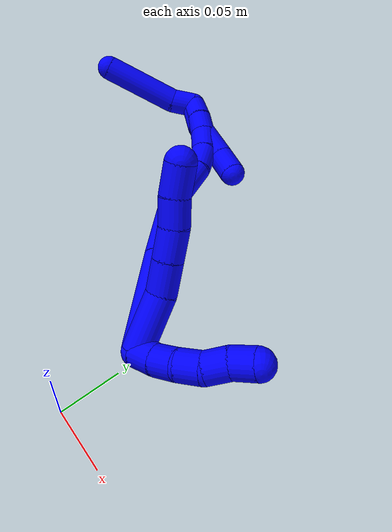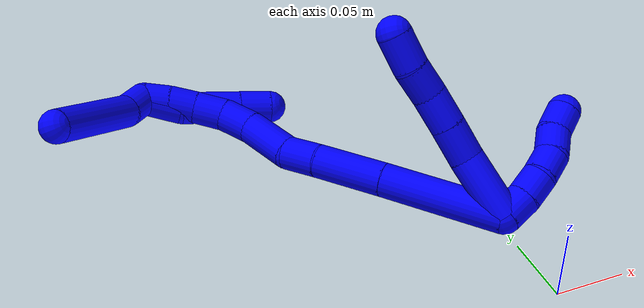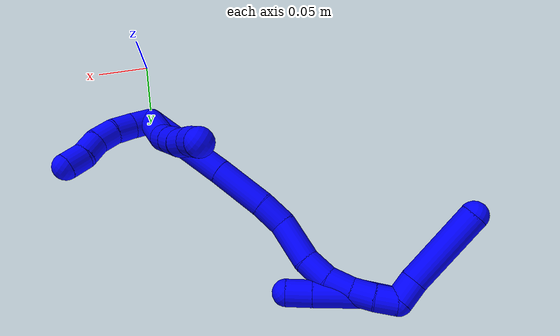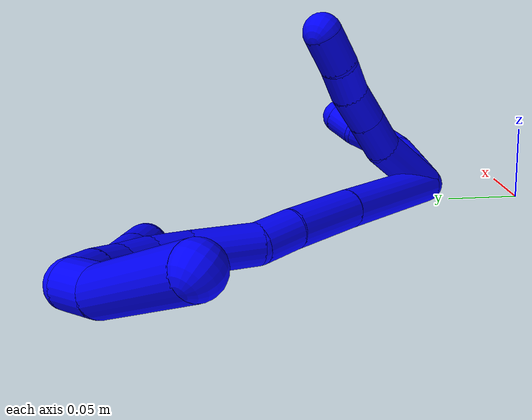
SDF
<sdf version="1.7">
 <world name="default">
  <model name="1">
   <static>0</static>
   <link name="1">
    <collision name="collision-cylinder-e_1_2_8">
     <pose>-0.022872 -0.003601 0.006556 0.502319 -1.25471 -0.367869</pose>
     <geometry><cylinder><radius>0.0125</radius><length>0.048128</length></cylinder></geometry>
     <surface>
      <friction><ode><mu>1.16</mu><mu2>1.16</mu2><slip1>0</slip1><slip2>0</slip2></ode></friction>
      <contact><ode><kp>1e+06</kp><kd>1</kd><max_vel>0</max_vel><min_depth>0.001</min_depth></ode></contact>
     </surface>
    </collision>
    <visual name="visual-cylinder-e_1_2_8">
     <pose>-0.022872 -0.003601 0.006556 0.502319 -1.25471 -0.367869</pose>
     <geometry><cylinder><radius>0.0125</radius><length>0.048128</length></cylinder></geometry>
     <material><ambient>0 0 1 1</ambient></material>
    </visual>
    <collision name="collision-cylinder-e_2_8_9">
     <pose>-0.059199 -0.006271 0.014776 -0.510667 -1.43005 0.445776</pose>
     <geometry><cylinder><radius>0.0125</radius><length>0.02718</length></cylinder></geometry>
     <surface>
      <friction><ode><mu>1.16</mu><mu2>1.16</mu2><slip1>0</slip1><slip2>0</slip2></ode></friction>
      <contact><ode><kp>1e+06</kp><kd>1</kd><max_vel>0</max_vel><min_depth>0.001</min_depth></ode></contact>
     </surface>
    </collision>
    <visual name="visual-cylinder-e_2_8_9">
     <pose>-0.059199 -0.006271 0.014776 -0.510667 -1.43005 0.445776</pose>
     <geometry><cylinder><radius>0.0125</radius><length>0.02718</length></cylinder></geometry>
     <material><ambient>0 0 1 1</ambient></material>
    </visual>
    <collision name="collision-cylinder-e_3_9_10">
     <pose>-0.085265 -0.004451 0.018274 -0.450809 -1.41054 0.385574</pose>
     <geometry><cylinder><radius>0.0125</radius><length>0.025549</length></cylinder></geometry>
     <surface>
      <friction><ode><mu>1.16</mu><mu2>1.16</mu2><slip1>0</slip1><slip2>0</slip2></ode></friction>
      <contact><ode><kp>1e+06</kp><kd>1</kd><max_vel>0</max_vel><min_depth>0.001</min_depth></ode></contact>
     </surface>
    </collision>
    <visual name="visual-cylinder-e_3_9_10">
     <pose>-0.085265 -0.004451 0.018274 -0.450809 -1.41054 0.385574</pose>
     <geometry><cylinder><radius>0.0125</radius><length>0.025549</length></cylinder></geometry>
     <material><ambient>0 0 1 1</ambient></material>
    </visual>
    <collision name="collision-cylinder-e_4_10_11">
     <pose>-0.109129 -0.000798 0.021444 -1.12076 -1.30441 0.893735</pose>
     <geometry><cylinder><radius>0.0125</radius><length>0.023328</length></cylinder></geometry>
     <surface>
      <friction><ode><mu>1.16</mu><mu2>1.16</mu2><slip1>0</slip1><slip2>0</slip2></ode></friction>
      <contact><ode><kp>1e+06</kp><kd>1</kd><max_vel>0</max_vel><min_depth>0.001</min_depth></ode></contact>
     </surface>
    </collision>
    <visual name="visual-cylinder-e_4_10_11">
     <pose>-0.109129 -0.000798 0.021444 -1.12076 -1.30441 0.893735</pose>
     <geometry><cylinder><radius>0.0125</radius><length>0.023328</length></cylinder></geometry>
     <material><ambient>0 0 1 1</ambient></material>
    </visual>
    <collision name="collision-cylinder-e_5_11_6">
     <pose>-0.133223 0.003086 0.023448 -1.03289 -1.46966 0.948207</pose>
     <geometry><cylinder><radius>0.0125</radius><length>0.025815</length></cylinder></geometry>
     <surface>
      <friction><ode><mu>1.16</mu><mu2>1.16</mu2><slip1>0</slip1><slip2>0</slip2></ode></friction>
      <contact><ode><kp>1e+06</kp><kd>1</kd><max_vel>0</max_vel><min_depth>0.001</min_depth></ode></contact>
     </surface>
    </collision>
    <visual name="visual-cylinder-e_5_11_6">
     <pose>-0.133223 0.003086 0.023448 -1.03289 -1.46966 0.948207</pose>
     <geometry><cylinder><radius>0.0125</radius><length>0.025815</length></cylinder></geometry>
     <material><ambient>0 0 1 1</ambient></material>
    </visual>
    <collision name="collision-cylinder-e_1_2_12">
     <pose>-0.002336 -0.007349 -0.006367 2.28468 -0.235781 -0.50744</pose>
     <geometry><cylinder><radius>0.0125</radius><length>0.02</length></cylinder></geometry>
     <surface>
      <friction><ode><mu>1.16</mu><mu2>1.16</mu2><slip1>0</slip1><slip2>0</slip2></ode></friction>
      <contact><ode><kp>1e+06</kp><kd>1</kd><max_vel>0</max_vel><min_depth>0.001</min_depth></ode></contact>
     </surface>
    </collision>
    <visual name="visual-cylinder-e_1_2_12">
     <pose>-0.002336 -0.007349 -0.006367 2.28468 -0.235781 -0.50744</pose>
     <geometry><cylinder><radius>0.0125</radius><length>0.02</length></cylinder></geometry>
     <material><ambient>0 0 1 1</ambient></material>
    </visual>
    <collision name="collision-cylinder-e_2_12_13">
     <pose>-0.008521 -0.021924 -0.018476 2.24234 -0.395122 -0.786376</pose>
     <geometry><cylinder><radius>0.0125</radius><length>0.02</length></cylinder></geometry>
     <surface>
      <friction><ode><mu>1.16</mu><mu2>1.16</mu2><slip1>0</slip1><slip2>0</slip2></ode></friction>
      <contact><ode><kp>1e+06</kp><kd>1</kd><max_vel>0</max_vel><min_depth>0.001</min_depth></ode></contact>
     </surface>
    </collision>
    <visual name="visual-cylinder-e_2_12_13">
     <pose>-0.008521 -0.021924 -0.018476 2.24234 -0.395122 -0.786376</pose>
     <geometry><cylinder><radius>0.0125</radius><length>0.02</length></cylinder></geometry>
     <material><ambient>0 0 1 1</ambient></material>
    </visual>
    <collision name="collision-cylinder-e_3_13_14">
     <pose>-0.015911 -0.037622 -0.028176 2.00777 -0.361906 -0.559686</pose>
     <geometry><cylinder><radius>0.0125</radius><length>0.02</length></cylinder></geometry>
     <surface>
      <friction><ode><mu>1.16</mu><mu2>1.16</mu2><slip1>0</slip1><slip2>0</slip2></ode></friction>
      <contact><ode><kp>1e+06</kp><kd>1</kd><max_vel>0</max_vel><min_depth>0.001</min_depth></ode></contact>
     </surface>
    </collision>
    <visual name="visual-cylinder-e_3_13_14">
     <pose>-0.015911 -0.037622 -0.028176 2.00777 -0.361906 -0.559686</pose>
     <geometry><cylinder><radius>0.0125</radius><length>0.02</length></cylinder></geometry>
     <material><ambient>0 0 1 1</ambient></material>
    </visual>
    <collision name="collision-cylinder-e_4_14_15">
     <pose>-0.02488 -0.054424 -0.033217 1.70012 -0.573868 -0.648185</pose>
     <geometry><cylinder><radius>0.0125</radius><length>0.02</length></cylinder></geometry>
     <surface>
      <friction><ode><mu>1.16</mu><mu2>1.16</mu2><slip1>0</slip1><slip2>0</slip2></ode></friction>
      <contact><ode><kp>1e+06</kp><kd>1</kd><max_vel>0</max_vel><min_depth>0.001</min_depth></ode></contact>
     </surface>
    </collision>
    <visual name="visual-cylinder-e_4_14_15">
     <pose>-0.02488 -0.054424 -0.033217 1.70012 -0.573868 -0.648185</pose>
     <geometry><cylinder><radius>0.0125</radius><length>0.02</length></cylinder></geometry>
     <material><ambient>0 0 1 1</ambient></material>
    </visual>
    <collision name="collision-cylinder-e_5_15_5">
     <pose>-0.034593 -0.070962 -0.038075 2.00176 -0.442634 -0.675306</pose>
     <geometry><cylinder><radius>0.0125</radius><length>0.02</length></cylinder></geometry>
     <surface>
      <friction><ode><mu>1.16</mu><mu2>1.16</mu2><slip1>0</slip1><slip2>0</slip2></ode></friction>
      <contact><ode><kp>1e+06</kp><kd>1</kd><max_vel>0</max_vel><min_depth>0.001</min_depth></ode></contact>
     </surface>
    </collision>
    <visual name="visual-cylinder-e_5_15_5">
     <pose>-0.034593 -0.070962 -0.038075 2.00176 -0.442634 -0.675306</pose>
     <geometry><cylinder><radius>0.0125</radius><length>0.02</length></cylinder></geometry>
     <material><ambient>0 0 1 1</ambient></material>
    </visual>
    <collision name="collision-cylinder-e_1_2_16">
     <pose>-0.023474 -0.001291 0.03821 0.033766 -0.550652 -0.00954</pose>
     <geometry><cylinder><radius>0.0125</radius><length>0.089726</length></cylinder></geometry>
     <surface>
      <friction><ode><mu>1.16</mu><mu2>1.16</mu2><slip1>0</slip1><slip2>0</slip2></ode></friction>
      <contact><ode><kp>1e+06</kp><kd>1</kd><max_vel>0</max_vel><min_depth>0.001</min_depth></ode></contact>
     </surface>
    </collision>
    <visual name="visual-cylinder-e_1_2_16">
     <pose>-0.023474 -0.001291 0.03821 0.033766 -0.550652 -0.00954</pose>
     <geometry><cylinder><radius>0.0125</radius><length>0.089726</length></cylinder></geometry>
     <material><ambient>0 0 1 1</ambient></material>
    </visual>
    <collision name="collision-cylinder-e_2_16_17">
     <pose>-0.059884 -0.004083 0.098946 0.066585 -0.520313 -0.01773</pose>
     <geometry><cylinder><radius>0.0125</radius><length>0.052039</length></cylinder></geometry>
     <surface>
      <friction><ode><mu>1.16</mu><mu2>1.16</mu2><slip1>0</slip1><slip2>0</slip2></ode></friction>
      <contact><ode><kp>1e+06</kp><kd>1</kd><max_vel>0</max_vel><min_depth>0.001</min_depth></ode></contact>
     </surface>
    </collision>
    <visual name="visual-cylinder-e_2_16_17">
     <pose>-0.059884 -0.004083 0.098946 0.066585 -0.520313 -0.01773</pose>
     <geometry><cylinder><radius>0.0125</radius><length>0.052039</length></cylinder></geometry>
     <material><ambient>0 0 1 1</ambient></material>
    </visual>
    <collision name="collision-cylinder-e_3_17_18">
     <pose>-0.078561 -0.007548 0.133405 0.163014 -0.443194 -0.036804</pose>
     <geometry><cylinder><radius>0.0125</radius><length>0.026774</length></cylinder></geometry>
     <surface>
      <friction><ode><mu>1.16</mu><mu2>1.16</mu2><slip1>0</slip1><slip2>0</slip2></ode></friction>
      <contact><ode><kp>1e+06</kp><kd>1</kd><max_vel>0</max_vel><min_depth>0.001</min_depth></ode></contact>
     </surface>
    </collision>
    <visual name="visual-cylinder-e_3_17_18">
     <pose>-0.078561 -0.007548 0.133405 0.163014 -0.443194 -0.036804</pose>
     <geometry><cylinder><radius>0.0125</radius><length>0.026774</length></cylinder></geometry>
     <material><ambient>0 0 1 1</ambient></material>
    </visual>
    <collision name="collision-cylinder-e_4_18_19">
     <pose>-0.095921 -0.017227 0.160375 0.474126 -0.602295 -0.149802</pose>
     <geometry><cylinder><radius>0.0125</radius><length>0.041019</length></cylinder></geometry>
     <surface>
      <friction><ode><mu>1.16</mu><mu2>1.16</mu2><slip1>0</slip1><slip2>0</slip2></ode></friction>
      <contact><ode><kp>1e+06</kp><kd>1</kd><max_vel>0</max_vel><min_depth>0.001</min_depth></ode></contact>
     </surface>
    </collision>
    <visual name="visual-cylinder-e_4_18_19">
     <pose>-0.095921 -0.017227 0.160375 0.474126 -0.602295 -0.149802</pose>
     <geometry><cylinder><radius>0.0125</radius><length>0.041019</length></cylinder></geometry>
     <material><ambient>0 0 1 1</ambient></material>
    </visual>
    <collision name="collision-cylinder-e_5_19_20">
     <pose>-0.115251 -0.026581 0.185381 0.162814 -0.651877 -0.055138</pose>
     <geometry><cylinder><radius>0.0125</radius><length>0.025418</length></cylinder></geometry>
     <surface>
      <friction><ode><mu>1.16</mu><mu2>1.16</mu2><slip1>0</slip1><slip2>0</slip2></ode></friction>
      <contact><ode><kp>1e+06</kp><kd>1</kd><max_vel>0</max_vel><min_depth>0.001</min_depth></ode></contact>
     </surface>
    </collision>
    <visual name="visual-cylinder-e_5_19_20">
     <pose>-0.115251 -0.026581 0.185381 0.162814 -0.651877 -0.055138</pose>
     <geometry><cylinder><radius>0.0125</radius><length>0.025418</length></cylinder></geometry>
     <material><ambient>0 0 1 1</ambient></material>
    </visual>
    <collision name="collision-cylinder-e_6_20_21">
     <pose>-0.129694 -0.026132 0.204962 -0.213765 -0.600263 0.066385</pose>
     <geometry><cylinder><radius>0.0125</radius><length>0.023838</length></cylinder></geometry>
     <surface>
      <friction><ode><mu>1.16</mu><mu2>1.16</mu2><slip1>0</slip1><slip2>0</slip2></ode></friction>
      <contact><ode><kp>1e+06</kp><kd>1</kd><max_vel>0</max_vel><min_depth>0.001</min_depth></ode></contact>
     </surface>
    </collision>
    <visual name="visual-cylinder-e_6_20_21">
     <pose>-0.129694 -0.026132 0.204962 -0.213765 -0.600263 0.066385</pose>
     <geometry><cylinder><radius>0.0125</radius><length>0.023838</length></cylinder></geometry>
     <material><ambient>0 0 1 1</ambient></material>
    </visual>
    <collision name="collision-cylinder-e_7_21_22">
     <pose>-0.142559 -0.020499 0.222368 -0.427005 -0.621507 0.139034</pose>
     <geometry><cylinder><radius>0.0125</radius><length>0.021067</length></cylinder></geometry>
     <surface>
      <friction><ode><mu>1.16</mu><mu2>1.16</mu2><slip1>0</slip1><slip2>0</slip2></ode></friction>
      <contact><ode><kp>1e+06</kp><kd>1</kd><max_vel>0</max_vel><min_depth>0.001</min_depth></ode></contact>
     </surface>
    </collision>
    <visual name="visual-cylinder-e_7_21_22">
     <pose>-0.142559 -0.020499 0.222368 -0.427005 -0.621507 0.139034</pose>
     <geometry><cylinder><radius>0.0125</radius><length>0.021067</length></cylinder></geometry>
     <material><ambient>0 0 1 1</ambient></material>
    </visual>
    <collision name="collision-cylinder-e_8_22_1">
     <pose>-0.153676 -0.012653 0.23777 -0.514536 -0.518362 0.139293</pose>
     <geometry><cylinder><radius>0.0125</radius><length>0.020118</length></cylinder></geometry>
     <surface>
      <friction><ode><mu>1.16</mu><mu2>1.16</mu2><slip1>0</slip1><slip2>0</slip2></ode></friction>
      <contact><ode><kp>1e+06</kp><kd>1</kd><max_vel>0</max_vel><min_depth>0.001</min_depth></ode></contact>
     </surface>
    </collision>
    <visual name="visual-cylinder-e_8_22_1">
     <pose>-0.153676 -0.012653 0.23777 -0.514536 -0.518362 0.139293</pose>
     <geometry><cylinder><radius>0.0125</radius><length>0.020118</length></cylinder></geometry>
     <material><ambient>0 0 1 1</ambient></material>
    </visual>
    <collision name="collision-cylinder-e_1_1_23">
     <pose>-0.157863 0.003049 0.246574 -1.46612 0.06947 -0.062558</pose>
     <geometry><cylinder><radius>0.0125</radius><length>0.022984</length></cylinder></geometry>
     <surface>
      <friction><ode><mu>1.16</mu><mu2>1.16</mu2><slip1>0</slip1><slip2>0</slip2></ode></friction>
      <contact><ode><kp>1e+06</kp><kd>1</kd><max_vel>0</max_vel><min_depth>0.001</min_depth></ode></contact>
     </surface>
    </collision>
    <visual name="visual-cylinder-e_1_1_23">
     <pose>-0.157863 0.003049 0.246574 -1.46612 0.06947 -0.062558</pose>
     <geometry><cylinder><radius>0.0125</radius><length>0.022984</length></cylinder></geometry>
     <material><ambient>0 0 1 1</ambient></material>
    </visual>
    <collision name="collision-cylinder-e_2_23_4">
     <pose>-0.165424 0.052026 0.248799 -1.54345 -0.218825 0.212966</pose>
     <geometry><cylinder><radius>0.0125</radius><length>0.077016</length></cylinder></geometry>
     <surface>
      <friction><ode><mu>1.16</mu><mu2>1.16</mu2><slip1>0</slip1><slip2>0</slip2></ode></friction>
      <contact><ode><kp>1e+06</kp><kd>1</kd><max_vel>0</max_vel><min_depth>0.001</min_depth></ode></contact>
     </surface>
    </collision>
    <visual name="visual-cylinder-e_2_23_4">
     <pose>-0.165424 0.052026 0.248799 -1.54345 -0.218825 0.212966</pose>
     <geometry><cylinder><radius>0.0125</radius><length>0.077016</length></cylinder></geometry>
     <material><ambient>0 0 1 1</ambient></material>
    </visual>
    <collision name="collision-cylinder-e_1_1_24">
     <pose>-0.149341 -0.014307 0.234831 2.62755 0.655871 1.82604</pose>
     <geometry><cylinder><radius>0.0125</radius><length>0.030561</length></cylinder></geometry>
     <surface>
      <friction><ode><mu>1.16</mu><mu2>1.16</mu2><slip1>0</slip1><slip2>0</slip2></ode></friction>
      <contact><ode><kp>1e+06</kp><kd>1</kd><max_vel>0</max_vel><min_depth>0.001</min_depth></ode></contact>
     </surface>
    </collision>
    <visual name="visual-cylinder-e_1_1_24">
     <pose>-0.149341 -0.014307 0.234831 2.62755 0.655871 1.82604</pose>
     <geometry><cylinder><radius>0.0125</radius><length>0.030561</length></cylinder></geometry>
     <material><ambient>0 0 1 1</ambient></material>
    </visual>
    <collision name="collision-cylinder-e_2_24_25">
     <pose>-0.13101 -0.033146 0.207947 2.47386 0.40876 1.07729</pose>
     <geometry><cylinder><radius>0.0125</radius><length>0.045351</length></cylinder></geometry>
     <surface>
      <friction><ode><mu>1.16</mu><mu2>1.16</mu2><slip1>0</slip1><slip2>0</slip2></ode></friction>
      <contact><ode><kp>1e+06</kp><kd>1</kd><max_vel>0</max_vel><min_depth>0.001</min_depth></ode></contact>
     </surface>
    </collision>
    <visual name="visual-cylinder-e_2_24_25">
     <pose>-0.13101 -0.033146 0.207947 2.47386 0.40876 1.07729</pose>
     <geometry><cylinder><radius>0.0125</radius><length>0.045351</length></cylinder></geometry>
     <material><ambient>0 0 1 1</ambient></material>
    </visual>
    <collision name="collision-cylinder-e_3_25_3">
     <pose>-0.11722 -0.052637 0.182744 2.50102 0.407843 1.11494</pose>
     <geometry><cylinder><radius>0.0125</radius><length>0.024088</length></cylinder></geometry>
     <surface>
      <friction><ode><mu>1.16</mu><mu2>1.16</mu2><slip1>0</slip1><slip2>0</slip2></ode></friction>
      <contact><ode><kp>1e+06</kp><kd>1</kd><max_vel>0</max_vel><min_depth>0.001</min_depth></ode></contact>
     </surface>
    </collision>
    <visual name="visual-cylinder-e_3_25_3">
     <pose>-0.11722 -0.052637 0.182744 2.50102 0.407843 1.11494</pose>
     <geometry><cylinder><radius>0.0125</radius><length>0.024088</length></cylinder></geometry>
     <material><ambient>0 0 1 1</ambient></material>
    </visual>
    <collision name="collision-sphere-3">
     <pose>-0.112443 -0.059245 0.17388 0 -0 0</pose>
     <geometry><sphere><radius>0.0125</radius></sphere></geometry>
     <surface>
      <friction><ode><mu>1.16</mu><mu2>1.16</mu2><slip1>0</slip1><slip2>0</slip2></ode></friction>
      <contact><ode><kp>1e+06</kp><kd>1</kd><max_vel>0</max_vel><min_depth>0.001</min_depth></ode></contact>
     </surface>
    </collision>
    <visual name="visual-sphere-3">
     <pose>-0.112443 -0.059245 0.17388 0 -0 0</pose>
     <geometry><sphere><radius>0.0125</radius></sphere></geometry>
     <material><ambient>0 0 1 1</ambient></material>
    </visual>
    <collision name="collision-sphere-25">
     <pose>-0.121997 -0.04603 0.191609 0 -0 0</pose>
     <geometry><sphere><radius>0.0125</radius></sphere></geometry>
     <surface>
      <friction><ode><mu>1.16</mu><mu2>1.16</mu2><slip1>0</slip1><slip2>0</slip2></ode></friction>
      <contact><ode><kp>1e+06</kp><kd>1</kd><max_vel>0</max_vel><min_depth>0.001</min_depth></ode></contact>
     </surface>
    </collision>
    <visual name="visual-sphere-25">
     <pose>-0.121997 -0.04603 0.191609 0 -0 0</pose>
     <geometry><sphere><radius>0.0125</radius></sphere></geometry>
     <material><ambient>0 0 1 1</ambient></material>
    </visual>
    <collision name="collision-sphere-24">
     <pose>-0.140022 -0.020262 0.224285 0 -0 0</pose>
     <geometry><sphere><radius>0.0125</radius></sphere></geometry>
     <surface>
      <friction><ode><mu>1.16</mu><mu2>1.16</mu2><slip1>0</slip1><slip2>0</slip2></ode></friction>
      <contact><ode><kp>1e+06</kp><kd>1</kd><max_vel>0</max_vel><min_depth>0.001</min_depth></ode></contact>
     </surface>
    </collision>
    <visual name="visual-sphere-24">
     <pose>-0.140022 -0.020262 0.224285 0 -0 0</pose>
     <geometry><sphere><radius>0.0125</radius></sphere></geometry>
     <material><ambient>0 0 1 1</ambient></material>
    </visual>
    <collision name="collision-sphere-4">
     <pose>-0.173784 0.089602 0.249827 0 -0 0</pose>
     <geometry><sphere><radius>0.0125</radius></sphere></geometry>
     <surface>
      <friction><ode><mu>1.16</mu><mu2>1.16</mu2><slip1>0</slip1><slip2>0</slip2></ode></friction>
      <contact><ode><kp>1e+06</kp><kd>1</kd><max_vel>0</max_vel><min_depth>0.001</min_depth></ode></contact>
     </surface>
    </collision>
    <visual name="visual-sphere-4">
     <pose>-0.173784 0.089602 0.249827 0 -0 0</pose>
     <geometry><sphere><radius>0.0125</radius></sphere></geometry>
     <material><ambient>0 0 1 1</ambient></material>
    </visual>
    <collision name="collision-sphere-23">
     <pose>-0.157065 0.014451 0.247771 0 -0 0</pose>
     <geometry><sphere><radius>0.0125</radius></sphere></geometry>
     <surface>
      <friction><ode><mu>1.16</mu><mu2>1.16</mu2><slip1>0</slip1><slip2>0</slip2></ode></friction>
      <contact><ode><kp>1e+06</kp><kd>1</kd><max_vel>0</max_vel><min_depth>0.001</min_depth></ode></contact>
     </surface>
    </collision>
    <visual name="visual-sphere-23">
     <pose>-0.157065 0.014451 0.247771 0 -0 0</pose>
     <geometry><sphere><radius>0.0125</radius></sphere></geometry>
     <material><ambient>0 0 1 1</ambient></material>
    </visual>
    <collision name="collision-sphere-1">
     <pose>-0.15866 -0.008353 0.245376 0 -0 0</pose>
     <geometry><sphere><radius>0.0125</radius></sphere></geometry>
     <surface>
      <friction><ode><mu>1.16</mu><mu2>1.16</mu2><slip1>0</slip1><slip2>0</slip2></ode></friction>
      <contact><ode><kp>1e+06</kp><kd>1</kd><max_vel>0</max_vel><min_depth>0.001</min_depth></ode></contact>
     </surface>
    </collision>
    <visual name="visual-sphere-1">
     <pose>-0.15866 -0.008353 0.245376 0 -0 0</pose>
     <geometry><sphere><radius>0.0125</radius></sphere></geometry>
     <material><ambient>0 0 1 1</ambient></material>
    </visual>
    <collision name="collision-sphere-22">
     <pose>-0.148693 -0.016953 0.230163 0 -0 0</pose>
     <geometry><sphere><radius>0.0125</radius></sphere></geometry>
     <surface>
      <friction><ode><mu>1.16</mu><mu2>1.16</mu2><slip1>0</slip1><slip2>0</slip2></ode></friction>
      <contact><ode><kp>1e+06</kp><kd>1</kd><max_vel>0</max_vel><min_depth>0.001</min_depth></ode></contact>
     </surface>
    </collision>
    <visual name="visual-sphere-22">
     <pose>-0.148693 -0.016953 0.230163 0 -0 0</pose>
     <geometry><sphere><radius>0.0125</radius></sphere></geometry>
     <material><ambient>0 0 1 1</ambient></material>
    </visual>
    <collision name="collision-sphere-21">
     <pose>-0.136426 -0.024046 0.214574 0 -0 0</pose>
     <geometry><sphere><radius>0.0125</radius></sphere></geometry>
     <surface>
      <friction><ode><mu>1.16</mu><mu2>1.16</mu2><slip1>0</slip1><slip2>0</slip2></ode></friction>
      <contact><ode><kp>1e+06</kp><kd>1</kd><max_vel>0</max_vel><min_depth>0.001</min_depth></ode></contact>
     </surface>
    </collision>
    <visual name="visual-sphere-21">
     <pose>-0.136426 -0.024046 0.214574 0 -0 0</pose>
     <geometry><sphere><radius>0.0125</radius></sphere></geometry>
     <material><ambient>0 0 1 1</ambient></material>
    </visual>
    <collision name="collision-sphere-6">
     <pose>-0.146065 0.004205 0.024115 0 -0 0</pose>
     <geometry><sphere><radius>0.0125</radius></sphere></geometry>
     <surface>
      <friction><ode><mu>1.16</mu><mu2>1.16</mu2><slip1>0</slip1><slip2>0</slip2></ode></friction>
      <contact><ode><kp>1e+06</kp><kd>1</kd><max_vel>0</max_vel><min_depth>0.001</min_depth></ode></contact>
     </surface>
    </collision>
    <visual name="visual-sphere-6">
     <pose>-0.146065 0.004205 0.024115 0 -0 0</pose>
     <geometry><sphere><radius>0.0125</radius></sphere></geometry>
     <material><ambient>0 0 1 1</ambient></material>
    </visual>
    <collision name="collision-sphere-11">
     <pose>-0.120382 0.001967 0.02278 0 -0 0</pose>
     <geometry><sphere><radius>0.0125</radius></sphere></geometry>
     <surface>
      <friction><ode><mu>1.16</mu><mu2>1.16</mu2><slip1>0</slip1><slip2>0</slip2></ode></friction>
      <contact><ode><kp>1e+06</kp><kd>1</kd><max_vel>0</max_vel><min_depth>0.001</min_depth></ode></contact>
     </surface>
    </collision>
    <visual name="visual-sphere-11">
     <pose>-0.120382 0.001967 0.02278 0 -0 0</pose>
     <geometry><sphere><radius>0.0125</radius></sphere></geometry>
     <material><ambient>0 0 1 1</ambient></material>
    </visual>
    <collision name="collision-sphere-10">
     <pose>-0.097876 -0.003563 0.020109 0 -0 0</pose>
     <geometry><sphere><radius>0.0125</radius></sphere></geometry>
     <surface>
      <friction><ode><mu>1.16</mu><mu2>1.16</mu2><slip1>0</slip1><slip2>0</slip2></ode></friction>
      <contact><ode><kp>1e+06</kp><kd>1</kd><max_vel>0</max_vel><min_depth>0.001</min_depth></ode></contact>
     </surface>
    </collision>
    <visual name="visual-sphere-10">
     <pose>-0.097876 -0.003563 0.020109 0 -0 0</pose>
     <geometry><sphere><radius>0.0125</radius></sphere></geometry>
     <material><ambient>0 0 1 1</ambient></material>
    </visual>
    <collision name="collision-sphere-9">
     <pose>-0.072655 -0.005339 0.016439 0 -0 0</pose>
     <geometry><sphere><radius>0.0125</radius></sphere></geometry>
     <surface>
      <friction><ode><mu>1.16</mu><mu2>1.16</mu2><slip1>0</slip1><slip2>0</slip2></ode></friction>
      <contact><ode><kp>1e+06</kp><kd>1</kd><max_vel>0</max_vel><min_depth>0.001</min_depth></ode></contact>
     </surface>
    </collision>
    <visual name="visual-sphere-9">
     <pose>-0.072655 -0.005339 0.016439 0 -0 0</pose>
     <geometry><sphere><radius>0.0125</radius></sphere></geometry>
     <material><ambient>0 0 1 1</ambient></material>
    </visual>
    <collision name="collision-sphere-2">
     <geometry><sphere><radius>0.0125</radius></sphere></geometry>
     <surface>
      <friction><ode><mu>1.16</mu><mu2>1.16</mu2><slip1>0</slip1><slip2>0</slip2></ode></friction>
      <contact><ode><kp>1e+06</kp><kd>1</kd><max_vel>0</max_vel><min_depth>0.001</min_depth></ode></contact>
     </surface>
    </collision>
    <visual name="visual-sphere-2">
     <geometry><sphere><radius>0.0125</radius></sphere></geometry>
     <material><ambient>0 0 1 1</ambient></material>
    </visual>
    <collision name="collision-sphere-19">
     <pose>-0.10754 -0.024944 0.175412 0 -0 0</pose>
     <geometry><sphere><radius>0.0125</radius></sphere></geometry>
     <surface>
      <friction><ode><mu>1.16</mu><mu2>1.16</mu2><slip1>0</slip1><slip2>0</slip2></ode></friction>
      <contact><ode><kp>1e+06</kp><kd>1</kd><max_vel>0</max_vel><min_depth>0.001</min_depth></ode></contact>
     </surface>
    </collision>
    <visual name="visual-sphere-19">
     <pose>-0.10754 -0.024944 0.175412 0 -0 0</pose>
     <geometry><sphere><radius>0.0125</radius></sphere></geometry>
     <material><ambient>0 0 1 1</ambient></material>
    </visual>
    <collision name="collision-sphere-8">
     <pose>-0.045744 -0.007203 0.013112 0 -0 0</pose>
     <geometry><sphere><radius>0.0125</radius></sphere></geometry>
     <surface>
      <friction><ode><mu>1.16</mu><mu2>1.16</mu2><slip1>0</slip1><slip2>0</slip2></ode></friction>
      <contact><ode><kp>1e+06</kp><kd>1</kd><max_vel>0</max_vel><min_depth>0.001</min_depth></ode></contact>
     </surface>
    </collision>
    <visual name="visual-sphere-8">
     <pose>-0.045744 -0.007203 0.013112 0 -0 0</pose>
     <geometry><sphere><radius>0.0125</radius></sphere></geometry>
     <material><ambient>0 0 1 1</ambient></material>
    </visual>
    <collision name="collision-sphere-12">
     <pose>-0.004672 -0.014698 -0.012733 0 -0 0</pose>
     <geometry><sphere><radius>0.0125</radius></sphere></geometry>
     <surface>
      <friction><ode><mu>1.16</mu><mu2>1.16</mu2><slip1>0</slip1><slip2>0</slip2></ode></friction>
      <contact><ode><kp>1e+06</kp><kd>1</kd><max_vel>0</max_vel><min_depth>0.001</min_depth></ode></contact>
     </surface>
    </collision>
    <visual name="visual-sphere-12">
     <pose>-0.004672 -0.014698 -0.012733 0 -0 0</pose>
     <geometry><sphere><radius>0.0125</radius></sphere></geometry>
     <material><ambient>0 0 1 1</ambient></material>
    </visual>
    <collision name="collision-sphere-13">
     <pose>-0.01237 -0.029149 -0.024218 0 -0 0</pose>
     <geometry><sphere><radius>0.0125</radius></sphere></geometry>
     <surface>
      <friction><ode><mu>1.16</mu><mu2>1.16</mu2><slip1>0</slip1><slip2>0</slip2></ode></friction>
      <contact><ode><kp>1e+06</kp><kd>1</kd><max_vel>0</max_vel><min_depth>0.001</min_depth></ode></contact>
     </surface>
    </collision>
    <visual name="visual-sphere-13">
     <pose>-0.01237 -0.029149 -0.024218 0 -0 0</pose>
     <geometry><sphere><radius>0.0125</radius></sphere></geometry>
     <material><ambient>0 0 1 1</ambient></material>
    </visual>
    <collision name="collision-sphere-14">
     <pose>-0.019452 -0.046096 -0.032134 0 -0 0</pose>
     <geometry><sphere><radius>0.0125</radius></sphere></geometry>
     <surface>
      <friction><ode><mu>1.16</mu><mu2>1.16</mu2><slip1>0</slip1><slip2>0</slip2></ode></friction>
      <contact><ode><kp>1e+06</kp><kd>1</kd><max_vel>0</max_vel><min_depth>0.001</min_depth></ode></contact>
     </surface>
    </collision>
    <visual name="visual-sphere-14">
     <pose>-0.019452 -0.046096 -0.032134 0 -0 0</pose>
     <geometry><sphere><radius>0.0125</radius></sphere></geometry>
     <material><ambient>0 0 1 1</ambient></material>
    </visual>
    <collision name="collision-sphere-15">
     <pose>-0.030309 -0.062752 -0.0343 0 -0 0</pose>
     <geometry><sphere><radius>0.0125</radius></sphere></geometry>
     <surface>
      <friction><ode><mu>1.16</mu><mu2>1.16</mu2><slip1>0</slip1><slip2>0</slip2></ode></friction>
      <contact><ode><kp>1e+06</kp><kd>1</kd><max_vel>0</max_vel><min_depth>0.001</min_depth></ode></contact>
     </surface>
    </collision>
    <visual name="visual-sphere-15">
     <pose>-0.030309 -0.062752 -0.0343 0 -0 0</pose>
     <geometry><sphere><radius>0.0125</radius></sphere></geometry>
     <material><ambient>0 0 1 1</ambient></material>
    </visual>
    <collision name="collision-sphere-5">
     <pose>-0.038876 -0.079172 -0.04185 0 -0 0</pose>
     <geometry><sphere><radius>0.0125</radius></sphere></geometry>
     <surface>
      <friction><ode><mu>1.16</mu><mu2>1.16</mu2><slip1>0</slip1><slip2>0</slip2></ode></friction>
      <contact><ode><kp>1e+06</kp><kd>1</kd><max_vel>0</max_vel><min_depth>0.001</min_depth></ode></contact>
     </surface>
    </collision>
    <visual name="visual-sphere-5">
     <pose>-0.038876 -0.079172 -0.04185 0 -0 0</pose>
     <geometry><sphere><radius>0.0125</radius></sphere></geometry>
     <material><ambient>0 0 1 1</ambient></material>
    </visual>
    <collision name="collision-sphere-16">
     <pose>-0.046949 -0.002581 0.07642 0 -0 0</pose>
     <geometry><sphere><radius>0.0125</radius></sphere></geometry>
     <surface>
      <friction><ode><mu>1.16</mu><mu2>1.16</mu2><slip1>0</slip1><slip2>0</slip2></ode></friction>
      <contact><ode><kp>1e+06</kp><kd>1</kd><max_vel>0</max_vel><min_depth>0.001</min_depth></ode></contact>
     </surface>
    </collision>
    <visual name="visual-sphere-16">
     <pose>-0.046949 -0.002581 0.07642 0 -0 0</pose>
     <geometry><sphere><radius>0.0125</radius></sphere></geometry>
     <material><ambient>0 0 1 1</ambient></material>
    </visual>
    <collision name="collision-sphere-17">
     <pose>-0.07282 -0.005586 0.121472 0 -0 0</pose>
     <geometry><sphere><radius>0.0125</radius></sphere></geometry>
     <surface>
      <friction><ode><mu>1.16</mu><mu2>1.16</mu2><slip1>0</slip1><slip2>0</slip2></ode></friction>
      <contact><ode><kp>1e+06</kp><kd>1</kd><max_vel>0</max_vel><min_depth>0.001</min_depth></ode></contact>
     </surface>
    </collision>
    <visual name="visual-sphere-17">
     <pose>-0.07282 -0.005586 0.121472 0 -0 0</pose>
     <geometry><sphere><radius>0.0125</radius></sphere></geometry>
     <material><ambient>0 0 1 1</ambient></material>
    </visual>
    <collision name="collision-sphere-18">
     <pose>-0.084302 -0.009511 0.145339 0 -0 0</pose>
     <geometry><sphere><radius>0.0125</radius></sphere></geometry>
     <surface>
      <friction><ode><mu>1.16</mu><mu2>1.16</mu2><slip1>0</slip1><slip2>0</slip2></ode></friction>
      <contact><ode><kp>1e+06</kp><kd>1</kd><max_vel>0</max_vel><min_depth>0.001</min_depth></ode></contact>
     </surface>
    </collision>
    <visual name="visual-sphere-18">
     <pose>-0.084302 -0.009511 0.145339 0 -0 0</pose>
     <geometry><sphere><radius>0.0125</radius></sphere></geometry>
     <material><ambient>0 0 1 1</ambient></material>
    </visual>
    <collision name="collision-sphere-20">
     <pose>-0.122961 -0.028219 0.195351 0 -0 0</pose>
     <geometry><sphere><radius>0.0125</radius></sphere></geometry>
     <surface>
      <friction><ode><mu>1.16</mu><mu2>1.16</mu2><slip1>0</slip1><slip2>0</slip2></ode></friction>
      <contact><ode><kp>1e+06</kp><kd>1</kd><max_vel>0</max_vel><min_depth>0.001</min_depth></ode></contact>
     </surface>
    </collision>
    <visual name="visual-sphere-20">
     <pose>-0.122961 -0.028219 0.195351 0 -0 0</pose>
     <geometry><sphere><radius>0.0125</radius></sphere></geometry>
     <material><ambient>0 0 1 1</ambient></material>
    </visual>
    <inertial>
     <pose>-0.087563 -0.008794 0.111247 0 -0 0</pose>
     <mass>0.75</mass>
     <inertia>
      <ixx>0.000126</ixx>
      <ixy>0</ixy>
      <ixz>0</ixz>
      <iyy>0.000129</iyy>
      <iyz>0</iyz>
      <izz>6.4e-05</izz>
     </inertia>
    </inertial>
   </link>
   <pose>-0.001156 0.068717 0.012272 2.72484 1.01628 -1.13823</pose>
  </model>
 </world>
</sdf>
